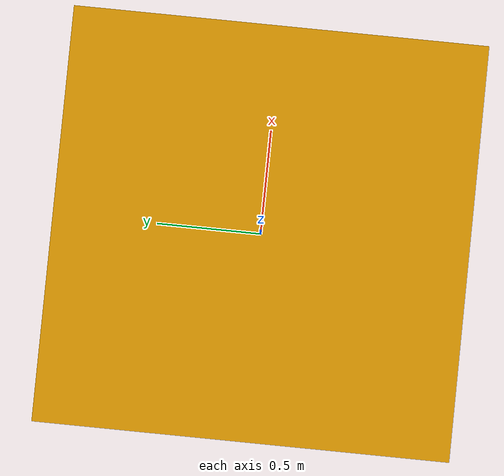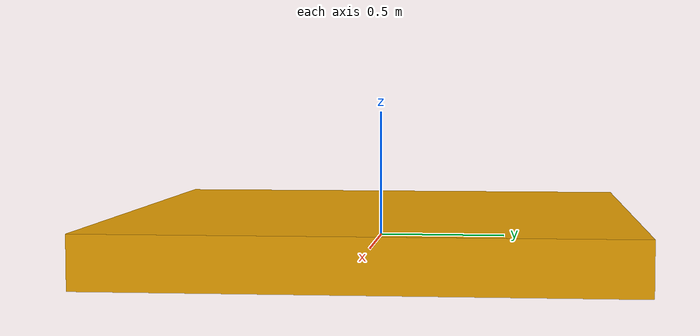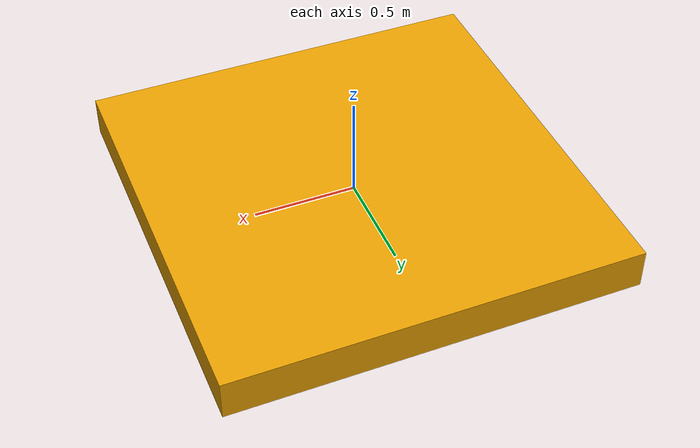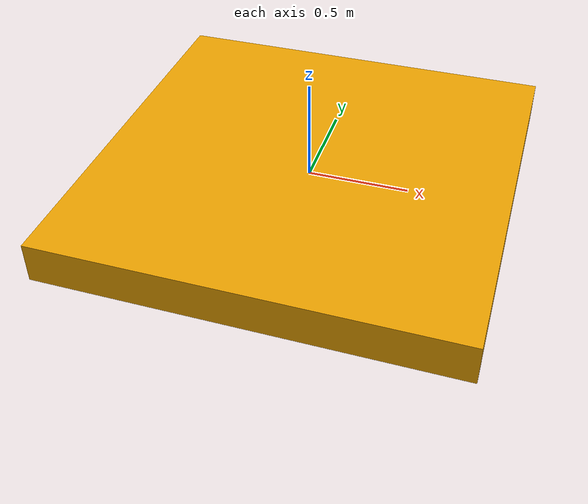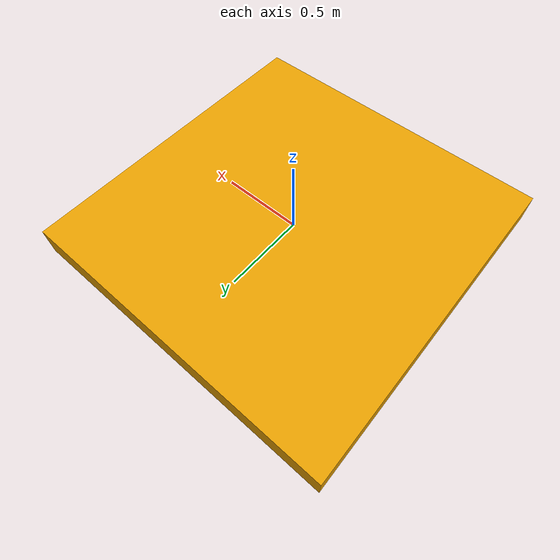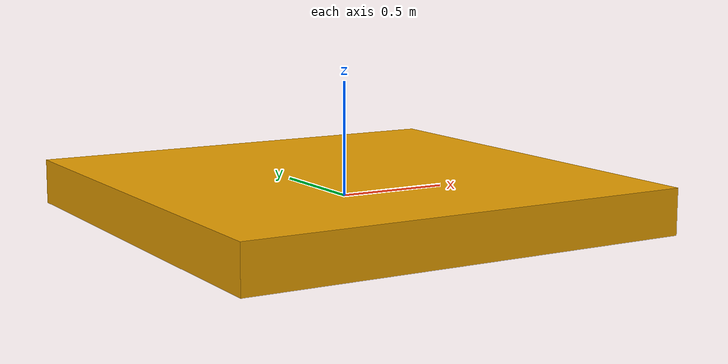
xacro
<?xml version="1.0"?>

<!--

Gazebo Platform Definition File
Author: Matthew Rydalch

-->

<robot name="Platform" xmlns:xacro="http://ros.org/wiki/xacro">

  <!-- Properties -->
  <xacro:property name="namespace" value="platform" />
  <xacro:property name="mass" value="300.0" />
  <xacro:property name="body_width" value="2.0" />
  <xacro:property name="body_height" value="0.2" />
  <xacro:property name="body_inertia">
    <inertia ixx="70.00" ixy="80.0" ixz="80.0" iyy="80.08" iyz="80.0" izz="80.12" />
  </xacro:property>
  <xacro:property name="color" value="Black" />

  <!-- *********************** GAZEBO ROBOT DEFINITION ******************* -->

  <link name="${namespace}/base_link">
    <inertial>
      <mass value="${mass}" />  <!-- [kg] -->
      <origin xyz="0 0 0" />
      <xacro:insert_block name="body_inertia" />
    </inertial>

    <visual>
      <origin xyz="0 0 0" rpy="0 0 0" />
      <geometry>
        <box size="${body_width} ${body_width} ${body_height}"/>
      </geometry>
    </visual>

    <collision>
      <origin xyz="0 0 0" rpy="0 0 0" />
      <geometry>
        <box size="${body_width} ${body_width} ${body_height}"/>
      </geometry>
    </collision>
  </link>

  <gazebo>
    <plugin name="object_controller" filename="libgazebo_ros_planar_move.so">
      <commandTopic>cmd_vel</commandTopic>
      <odometryTopic>odom</odometryTopic>
      <odometryFrame>odom</odometryFrame>
      <odometryRate>20.0</odometryRate>
      <robotBaseFrame>base_footprint</robotBaseFrame>
      <material>Gazebo/${color}</material>
    </plugin>
  </gazebo>

</robot>
